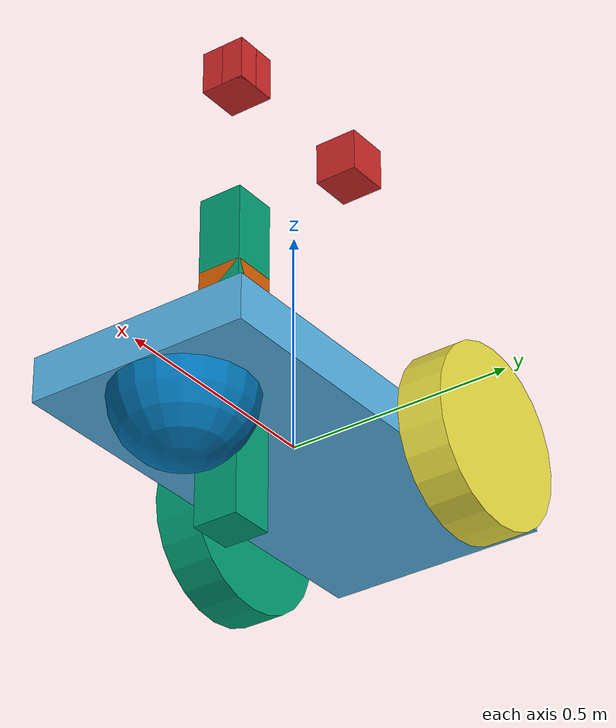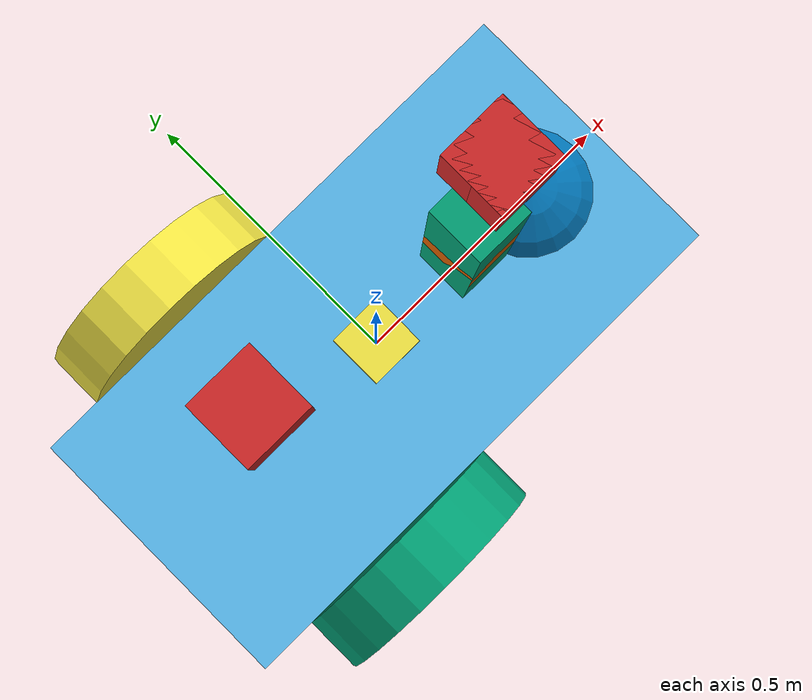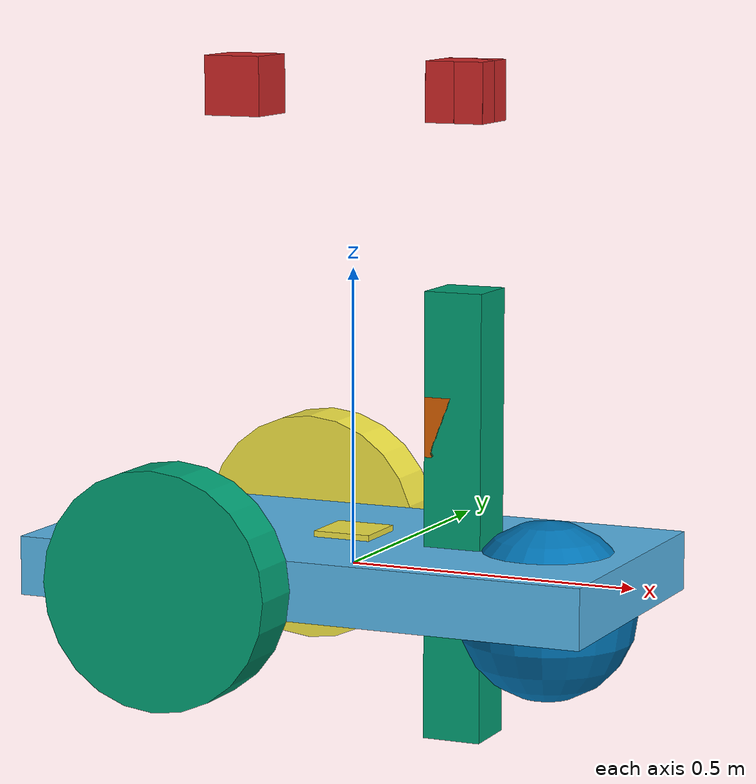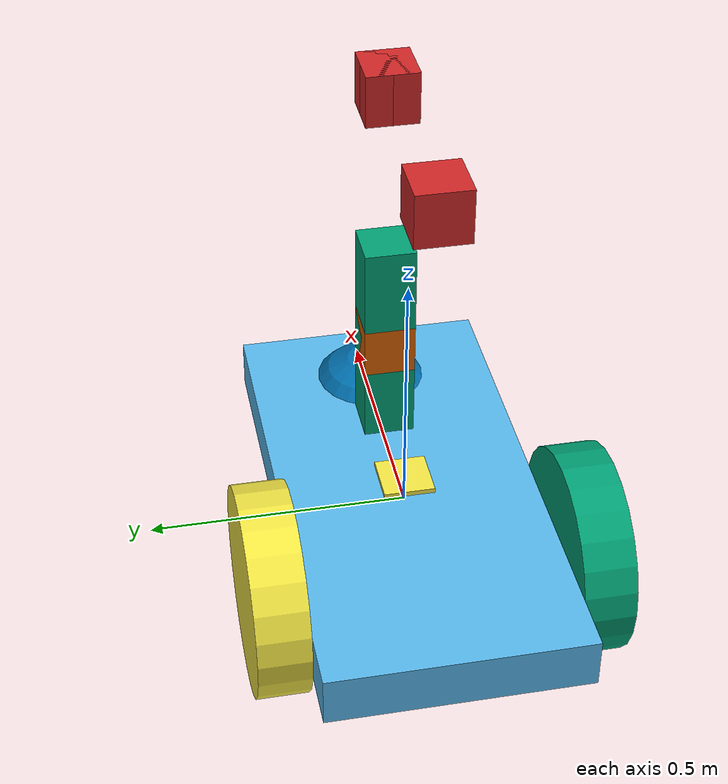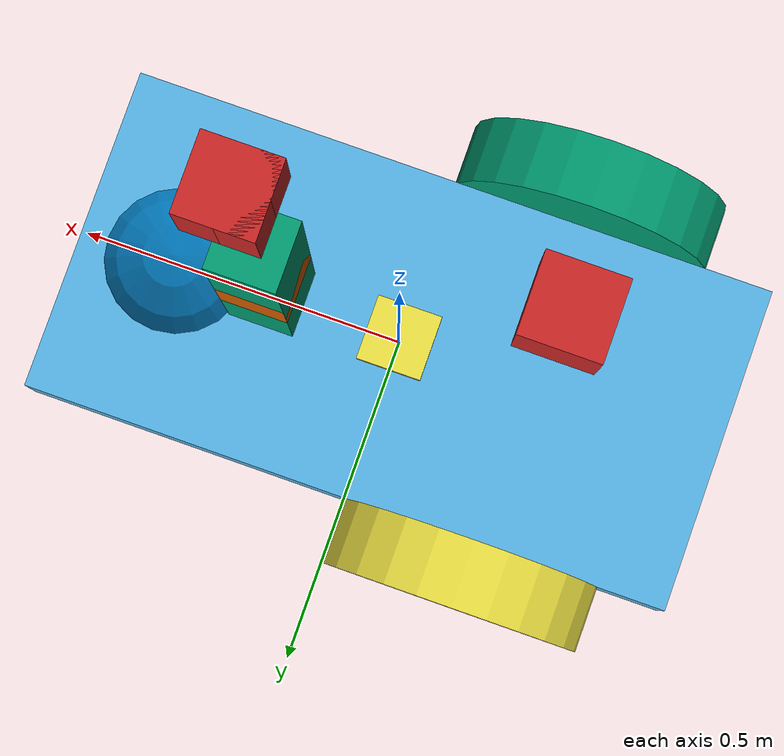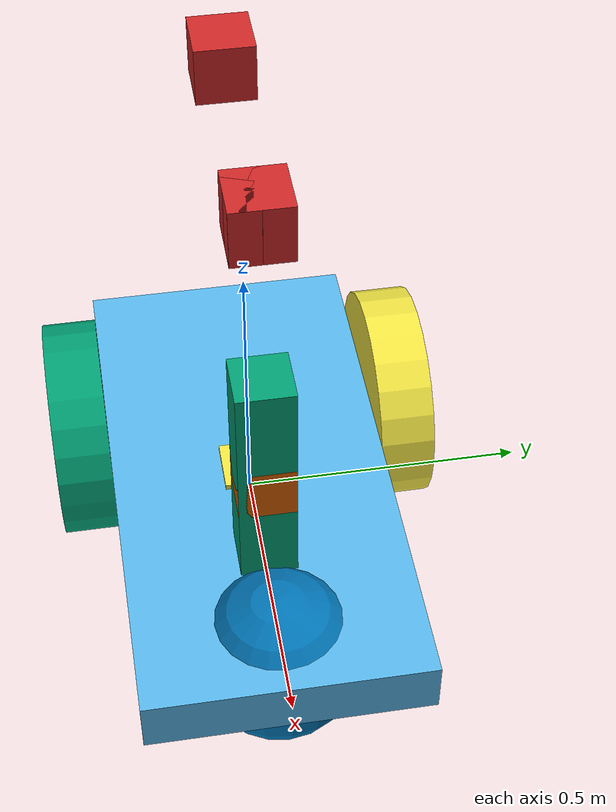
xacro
<?xml version="1.0"?>
<robot xmlns:xacro="http://www.ros.org/wiki/xacro" name="igvc_robot">

  <xacro:property name="base_link_length" value="0.5"/>
  <xacro:property name="base_link_radius" value="0.4"/>

  <!-- Dummy Link and Joint -->
  <link name="base_footprint">
  </link>

  <!-- Base Link -->
  <link name="base_link">
    <visual>
      <geometry>
        <box size="1 0.5 0.1"/>
      </geometry>
      <origin rpy="0 0 0" xyz="0 0 0"/>
    </visual>
    <collision>
      <geometry>
        <box size="1 0.5 0.1"/>
      </geometry>
      <origin rpy="0 0 0" xyz="0 0 0"/>
    </collision>
    <inertial>
      <origin rpy="0 0 0" xyz="0 0 0"/>
      <mass value="1"/>
      <inertia ixx="0.083" ixy="0" ixz="0" iyy="0.083" iyz="0" izz="0.083"/>
    </inertial>
  </link>

  <!-- Left Wheel Link -->
  <link name="right_wheel">
    <visual>
      <geometry>
        <cylinder length="0.1" radius="0.2"/>
      </geometry>
      <origin rpy="1.5708 1.5708 0" xyz="0 -0.3 0"/>
    </visual>
    <collision>
      <geometry>
        <cylinder length="0.1" radius="0.2"/>
      </geometry>
      <origin rpy="1.5708 1.5708 0" xyz="0 -0.3 0"/>
    </collision>
    <inertial>
      <origin rpy="1.5708 1.5708 0" xyz="0 -0.3 0"/>
      <mass value="0.5"/>
      <inertia ixx="0.006" ixy="0" ixz="0" iyy="0.006" iyz="0" izz="0.001"/>
    </inertial>
  </link>

  <!-- Right Wheel Link -->
  <link name="left_wheel">
    <visual>
      <geometry>
        <cylinder length="0.1" radius="0.2"/>
      </geometry>
      <origin rpy="1.5708 1.5708 0" xyz="0 0.3 0"/>
    </visual>
    <collision>
      <geometry>
        <cylinder length="0.1" radius="0.2"/>
      </geometry>
      <origin rpy="1.5708 1.5708 0" xyz="0 0.3 0"/>
    </collision>
    <inertial>
      <origin rpy="1.5708 1.5708 0" xyz="0 0.3 0"/>
      <mass value="0.5"/>
      <inertia ixx="0.006" ixy="0" ixz="0" iyy="0.006" iyz="0" izz="0.001"/>
    </inertial>
  </link>

  <link name="castor_wheel">
    <visual>
      <geometry>
        <sphere radius="0.15"/>
      </geometry>
      <origin rpy="0 0 0" xyz="0 0 0"/>
    </visual>
    <collision>
      <geometry>
        <sphere radius="0.15"/>
      </geometry>
      <origin rpy="0 0 0" xyz="0 0 0"/>
    </collision>
    <inertial>
      <mass value="0.3"/>
      <origin rpy="0 0 0" xyz="0 0 0"/>
      <inertia ixx="0.006" ixy="0" ixz="0" iyy="0.006" iyz="0" izz="0.001"/>
    </inertial>
  </link>

  <!-- Lidar Link -->
  <link name="lidar_link">
    <visual>
      <geometry>
        <box size="0.1 0.1 0.1"/>
      </geometry>
      <origin rpy="0 0 0" xyz="0 0 0"/>
    </visual>
    <collision>
      <geometry>
        <box size="0.1 0.1 0.1"/>
      </geometry>
      <origin rpy="0 0 0" xyz="0 0 0"/>
    </collision>
    <inertial>
      <mass value="0.05"/>
      <origin rpy="0 0 0" xyz="0 0 0"/>
      <inertia ixx="0.001" ixy="0" ixz="0" iyy="0.001" iyz="0" izz="0.001"/>
    </inertial>
  </link>

<link name="camera_link_forward">
    <collision>
      <origin xyz="0 0 0" rpy="0 0 0"/>
      <geometry>
    <box size="0.1 0.1 0.1"/>
      </geometry>
    </collision>

    <visual>
      <origin xyz="0 0 0" rpy="0 0 0"/>
      <geometry>
    <box size="0.1 0.1 0.1"/>
      </geometry>
      <material name="red"/>
    </visual>

    <inertial>
      <mass value="1e-5" />
      <origin xyz="0 0 0" rpy="0 0 0"/>
      <inertia ixx="1e-6" ixy="0" ixz="0" iyy="1e-6" iyz="0" izz="1e-6" />
    </inertial>
  </link>

<link name="camera_link_backward">
    <collision>
      <origin xyz="0 0 0" rpy="0 0 0"/>
      <geometry>
    <box size="0.1 0.1 0.1"/>
      </geometry>
    </collision>

    <visual>
      <origin xyz="0 0 0" rpy="0 0 0"/>
      <geometry>
    <box size="0.1 0.1 0.1"/>
      </geometry>
      <material name="red"/>
    </visual>

    <inertial>
      <mass value="1e-5" />
      <origin xyz="0 0 0" rpy="0 0 0"/>
      <inertia ixx="1e-6" ixy="0" ixz="0" iyy="1e-6" iyz="0" izz="1e-6" />
    </inertial>
  </link>

  <link name="camera_link_left">
    <collision>
      <origin xyz="0 0 0" rpy="0 0 0"/>
      <geometry>
    <box size="0.1 0.1 0.1"/>
      </geometry>
    </collision>

    <visual>
      <origin xyz="0 0 0" rpy="0 0 0"/>
      <geometry>
    <box size="0.1 0.1 0.1"/>
      </geometry>
      <material name="red"/>
    </visual>

    <inertial>
      <mass value="1e-5" />
      <origin xyz="0 0 0" rpy="0 0 0"/>
      <inertia ixx="1e-6" ixy="0" ixz="0" iyy="1e-6" iyz="0" izz="1e-6" />
    </inertial>
  </link>

  <link name="camera_link_right">
    <collision>
      <origin xyz="0 0 0" rpy="0 0 0"/>
      <geometry>
    <box size="0.1 0.1 0.1"/>
      </geometry>
    </collision>

    <visual>
      <origin xyz="0 0 0" rpy="0 0 0"/>
      <geometry>
    <box size="0.1 0.1 0.1"/>
      </geometry>
      <material name="red"/>
    </visual>

    <inertial>
      <mass value="1e-5" />
      <origin xyz="0 0 0" rpy="0 0 0"/>
      <inertia ixx="1e-6" ixy="0" ixz="0" iyy="1e-6" iyz="0" izz="1e-6" />
    </inertial>
  </link>

  <!-- Lidar Stand -->
  <link name="lidar_stand">
    <visual>
      <geometry>
        <box size="0.1 0.1 0.75"/>
      </geometry>
      <origin rpy="0 0 0" xyz="0 0 0"/>
    </visual>
    <collision>
      <geometry>
        <box size="0.1 0.1 0.2"/>
      </geometry>
      <origin rpy="0 0 0" xyz="0 0 0"/>
    </collision>
    <inertial>
      <mass value="0.05"/>
      <origin rpy="0 0 0" xyz="0 0 0"/>
      <inertia ixx="0.001" ixy="0" ixz="0" iyy="0.001" iyz="0" izz="0.001"/>
    </inertial>
  </link>
  <!-- IMU Link -->
  <link name="imu_link">
    <visual>
      <geometry>
        <box size="0.1 0.1 0.1"/>
      </geometry>
    </visual>
    <collision>
      <geometry>
        <box size="0.1 0.1 0.1"/>
      </geometry>
    </collision>

    <inertial>
      <mass value="0.01"/>
      <inertia ixx="0.001" ixy="0" ixz="0" iyy="0.001" iyz="0" izz="0.001"/>
    </inertial>
  </link>

  <link name = "camera_forward_frame">
  </link>

  <joint name = "camera_forward_frame_joint" type="fixed">
    <parent link="base_link"/>
    <child link = "camera_forward_frame"/>
    <origin xyz="0.2 0 0" rpy="0 0 0"/>
  </joint>

  <link name = "camera_backward_frame">
  </link>

  <joint name = "camera_backward_frame_joint" type="fixed">
    <parent link="base_link"/>
    <child link = "camera_backward_frame"/>
    <origin xyz="-0.2 0 0" rpy="0 0 3.14"/>
  </joint>

  <link name = "camera_left_frame">
  </link>

  <joint name = "camera_left_frame_joint" type="fixed">
    <parent link="base_link"/>
    <child link = "camera_left_frame"/>
    <origin xyz="0.2 0 0" rpy="0 0 1.57"/>
  </joint>

  <link name = "camera_right_frame">
  </link>

  <joint name = "camera_right_frame_joint" type="fixed">
    <parent link="base_link"/>
    <child link = "camera_right_frame"/>
    <origin xyz="0.2 0 0" rpy="0 0 -1.57"/>
  </joint>

  <!-- Joint Between Base Link and Left Wheel -->
  <joint name="left_wheel_joint" type="continuous">
    <parent link="base_link"/>
    <child link="left_wheel"/>
    <origin xyz="-0.2 0 0" rpy="0 0 0"/>
    <axis xyz="0 1 0"/>
  </joint>

  <joint name="base_footprint_joint" type="fixed">
    <parent link="base_link"/>
    <child link="base_footprint"/>
    <origin rpy="0 0 0" xyz="0 0 0"/>
  </joint>

  <!-- Joint Between Base Link and Right Wheel -->
  <joint name="right_wheel_joint" type="continuous">
    <parent link="base_link"/>
    <child link="right_wheel"/>
    <origin xyz="-0.2 0 0" rpy="0 0 0"/>
    <axis xyz="0 1 0"/>
  </joint>

  <joint name="castor_joint" type="fixed">
    <parent link="base_link"/>
    <child link="castor_wheel"/>
    <origin rpy="0 0 0" xyz="0.35 0 -0.05"/>
  </joint>

  <!-- Joint Between Base Link and Lidar Link -->
  <joint name="lidar_joint" type="fixed">
    <parent link="base_link"/>
    <child link="lidar_link"/>
    <origin xyz="0.2 0 0.25" rpy="0 0 0"/>
  </joint>
  <!-- Lidar stand joint -->

  <joint name="lidar_stand_joint" type="fixed">
    <parent link="base_link"/>
    <child link="lidar_stand"/>
    <origin xyz="0.2 0 0.1" rpy="0 0 0"/>
  </joint>

  <!-- IMU joint -->

  <joint name="imu_joint" type="fixed">
    <parent link="base_link"/>
    <child link="imu_link"/>
    <origin xyz="0 0 0.01"/>
  </joint>

  <joint name="camera_forward_joint" type="fixed">
    <parent link = "base_link"/>
    <child link="camera_link_forward"/>
    <origin xyz="0.2 0 0.8"/>
  </joint>

  <joint name="camera_backward_joint" type="fixed">
    <parent link = "base_link"/>
    <child link="camera_link_backward"/>
    <origin xyz="-0.2 0 0.8" rpy = "0 0 3.14"/>
  </joint>

  <joint name="camera_left_joint" type="fixed">
    <parent link = "base_link"/>
    <child link="camera_link_left"/>
    <origin xyz="0.2 0 0.8" rpy = "0 0 1.57"/>
  </joint>

  <joint name="camera_right_joint" type="fixed">
    <parent link = "base_link"/>
    <child link="camera_link_right"/>
    <origin xyz="0.2 0 0.8" rpy = "0 0 -1.57"/>
  </joint>

  <!-- Gazebo Plugin -->

<gazebo>
  <plugin name='diff_drive' filename='libgazebo_ros_diff_drive.so'>
    <ros>
      <namespace>/</namespace>
    </ros>

    <!-- wheels -->
    <left_joint>left_wheel_joint</left_joint>
    <right_joint>right_wheel_joint</right_joint>

    <!-- kinematics -->
    <wheel_separation>0.6</wheel_separation>
    <wheel_diameter>0.4</wheel_diameter>

    <!-- limits -->
    <max_wheel_torque>20</max_wheel_torque>
    <max_wheel_acceleration>1.0</max_wheel_acceleration>

    <!-- output -->
    <publish_odom>true</publish_odom>
    <publish_odom_tf>true</publish_odom_tf>
    <publish_wheel_tf>true</publish_wheel_tf>

    <odometry_frame>odom</odometry_frame>
    <robot_base_frame>base_link</robot_base_frame>
  </plugin>
</gazebo>

  <!-- LIDAR Plugin -->
  <gazebo reference="lidar_link">
    <sensor type="ray" name="laser">
      <pose>0 0 0 0 0 0</pose>
      <visualize>false</visualize>
      <update_rate>100</update_rate>
      <ray>
        <scan>
          <horizontal>
            <samples>720</samples>
            <resolution>1</resolution>
            <min_angle>-3.14</min_angle>
            <max_angle>3.14</max_angle>
          </horizontal>
        </scan>
        <range>
          <min>0.10</min>
          <max>30.0</max>
          <resolution>0.01</resolution>
        </range>
        <noise>
          <type>gaussian</type>
          <mean>0.0</mean>
          <stddev>0.01</stddev>
        </noise>
      </ray>
      <plugin name="laser" filename="libgazebo_ros_ray_sensor.so">
      <ros>

          <remapping>~/out:=scan</remapping>
      </ros>
      <output_type>sensor_msgs/LaserScan</output_type>
      <frameName>lidar_link</frameName>
      </plugin>
    </sensor>
  </gazebo>

  <gazebo reference="camera_link_forward">
    <sensor type="depth" name="camera_forward">
      <update_rate>30.0</update_rate>
      <camera name="camera_forward">
        <horizontal_fov>1.3962634</horizontal_fov>
        <image>
          <width>800</width>
          <height>800</height>
          <format>R8G8B8</format>
        </image>
        <clip>
          <near>0.02</near>
          <far>300</far>
        </clip>
        <noise>
          <type>gaussian</type>
          <!-- Noise is sampled independently per pixel on each frame.
               That pixel's noise value is added to each of its color
               channels, which at that point lie in the range [0,1]. -->
          <mean>0.0</mean>
          <stddev>0.007</stddev>
        </noise>
      </camera>
      <plugin name="camera_controller" filename="libgazebo_ros_camera.so">
        <alwaysOn>true</alwaysOn>
        <updateRate>0.0</updateRate>
        <camera_name>camera_forward</camera_name>
        <imageTopicName>image_raw</imageTopicName>
        <cameraInfoTopicName>camera_info</cameraInfoTopicName>
        <depthImageTopicName>image_depth</depthImageTopicName>
        <frameName>camera_link</frameName>
        <hackBaseline>0.07</hackBaseline>
        <distortionK1>0.0</distortionK1>
        <distortionK2>0.0</distortionK2>
        <distortionK3>0.0</distortionK3>
        <distortionT1>0.0</distortionT1>
        <distortionT2>0.0</distortionT2>
      </plugin>
    </sensor>
  </gazebo>

<gazebo reference="camera_link_backward">
    <sensor type="camera" name="camera_backward">
      <update_rate>30.0</update_rate>
      <camera name="camera_backward">
        <horizontal_fov>1.3962634</horizontal_fov>
        <image>
          <width>800</width>
          <height>800</height>
          <format>R8G8B8</format>
        </image>
        <clip>
          <near>0.02</near>
          <far>300</far>
        </clip>
        <noise>
          <type>gaussian</type>
          <mean>0.0</mean>
          <stddev>0.007</stddev>
        </noise>
      </camera>
      <plugin name="camera_controller_backward" filename="libgazebo_ros_camera.so">
        <alwaysOn>true</alwaysOn>
        <updateRate>0.0</updateRate>
        <camera_name>camera_backward</camera_name>
        <imageTopicName>image_raw_backward</imageTopicName>
        <cameraInfoTopicName>camera_info_backward</cameraInfoTopicName>
        <frameName>camera_link_backward</frameName>
        <hackBaseline>0.07</hackBaseline>
        <distortionK1>0.0</distortionK1>
        <distortionK2>0.0</distortionK2>
        <distortionK3>0.0</distortionK3>
        <distortionT1>0.0</distortionT1>
        <distortionT2>0.0</distortionT2>
      </plugin>
    </sensor>
  </gazebo>

  <gazebo reference="camera_link_left">
    <sensor type="camera" name="camera_left">
      <update_rate>30.0</update_rate>
      <camera name="camera_left">
        <horizontal_fov>1.3962634</horizontal_fov>
        <image>
          <width>800</width>
          <height>800</height>
          <format>R8G8B8</format>
        </image>
        <clip>
          <near>0.02</near>
          <far>300</far>
        </clip>
        <noise>
          <type>gaussian</type>
          <mean>0.0</mean>
          <stddev>0.007</stddev>
        </noise>
      </camera>
      <plugin name="camera_controller_left" filename="libgazebo_ros_camera.so">
        <alwaysOn>true</alwaysOn>
        <updateRate>0.0</updateRate>
        <camera_name>camera_left</camera_name>
        <imageTopicName>image_raw_left</imageTopicName>
        <cameraInfoTopicName>camera_info_left</cameraInfoTopicName>
        <frameName>camera_link_left</frameName>
        <hackBaseline>0.07</hackBaseline>
        <distortionK1>0.0</distortionK1>
        <distortionK2>0.0</distortionK2>
        <distortionK3>0.0</distortionK3>
        <distortionT1>0.0</distortionT1>
        <distortionT2>0.0</distortionT2>
      </plugin>
    </sensor>
  </gazebo>

<gazebo reference="camera_link_right">
    <sensor type="camera" name="camera_right">
      <update_rate>30.0</update_rate>
      <camera name="camera_right">
        <horizontal_fov>1.3962634</horizontal_fov>
        <image>
          <width>800</width>
          <height>800</height>
          <format>R8G8B8</format>
        </image>
        <clip>
          <near>0.02</near>
          <far>300</far>
        </clip>
        <noise>
          <type>gaussian</type>
          <mean>0.0</mean>
          <stddev>0.007</stddev>
        </noise>
      </camera>
      <plugin name="camera_controller_right" filename="libgazebo_ros_camera.so">
        <alwaysOn>true</alwaysOn>
        <updateRate>0.0</updateRate>
        <camera_name>camera_right</camera_name>
        <imageTopicName>image_raw_right</imageTopicName>
        <cameraInfoTopicName>camera_info_right</cameraInfoTopicName>
        <frameName>camera_link_right</frameName>
        <hackBaseline>0.07</hackBaseline>
        <distortionK1>0.0</distortionK1>
        <distortionK2>0.0</distortionK2>
        <distortionK3>0.0</distortionK3>
        <distortionT1>0.0</distortionT1>
        <distortionT2>0.0</distortionT2>
      </plugin>
    </sensor>
  </gazebo>
</robot>
